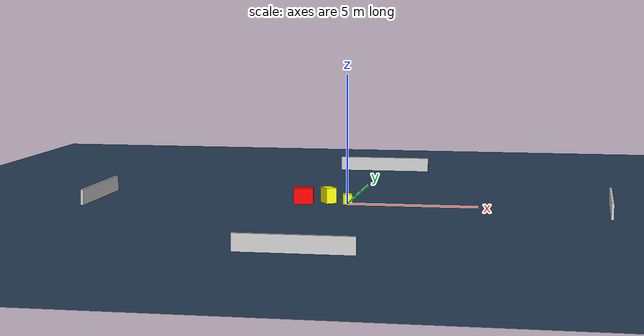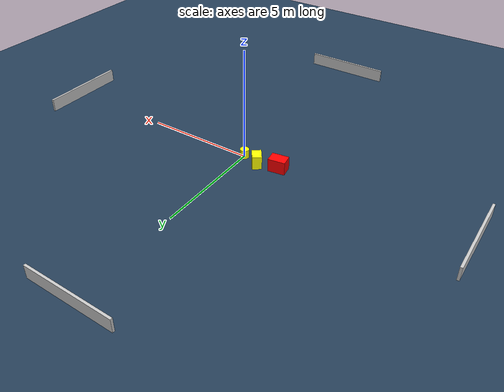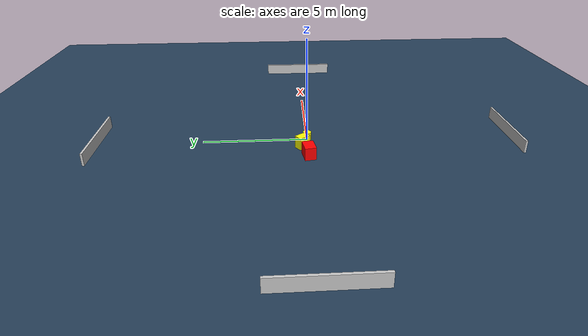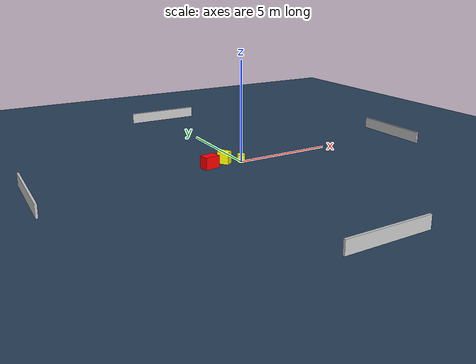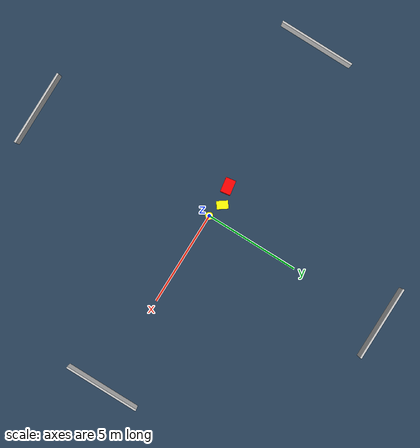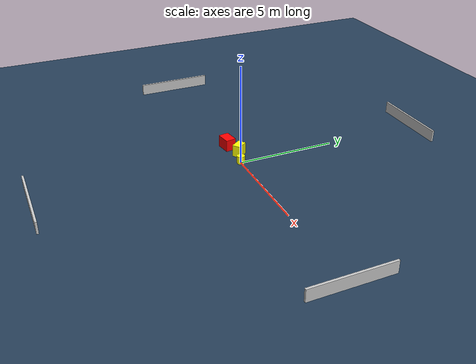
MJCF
<?xml version="1.0" ?>
<mujoco model="generated_environment">
  <option timestep="0.01" integrator="RK4" cone="elliptic"/>
  <default>
    <geom density="1"/>
  </default>
  <asset>
    <texture builtin="gradient" height="3072" name="skybox" rgb1="0.3 0.5 0.7" rgb2="0 0 0" type="skybox" width="512"/>
    <texture builtin="checker" height="300" name="groundplane" rgb1="0.2 0.3 0.4" rgb2="0.1 0.2 0.3" type="2d" width="300"/>
    <material name="groundplane" reflectance="0.2" texrepeat="5 5" texture="groundplane"/>
  </asset>
  <worldbody>
    <light dir="0 0 -1" directional="true" pos="0 0 1.5"/>
    <geom condim="3" friction="0.5 0.005 0.001" material="groundplane" name="floor" pos="0 0 0" size="0 0 0.05" type="plane"/>
    <body name="walls">
      <geom name="wall_1" condim="4" pos="-10.0 0.0 0.3" rgba="0.800000011920929 0.800000011920929 0.800000011920929 1.0" size="0.05 2.0 0.3" type="box"/>
      <geom name="wall_2" condim="4" pos="10.0 0.0 0.3" rgba="0.800000011920929 0.800000011920929 0.800000011920929 1.0" size="0.05 2.0 0.3" type="box"/>
      <geom name="wall_3" condim="4" pos="0.0 -10.0 0.3" rgba="0.800000011920929 0.800000011920929 0.800000011920929 1.0" size="2.0 0.05 0.3" type="box"/>
      <geom name="wall_4" condim="4" pos="0.0 10.0 0.3" rgba="0.800000011920929 0.800000011920929 0.800000011920929 1.0" size="2.0 0.05 0.3" type="box"/>
    </body>
    <body name="robot">
      <joint name="joint_x" type="slide" pos="0 0 0" axis="1 0 0"/>
      <joint name="joint_y" type="slide" pos="0 0 0" axis="0 1 0"/>
      <geom name="robot" type="cylinder" pos="0.0 0.0 0.2" size="0.2 0.2 0.0" mass="5.0" friction="1.0 0.005 0.0001" condim="4" rgba="1.0 1.0 0.0 1.0"/>
    </body>
    <body name="obstacle_1_movable">
      <geom name="obstacle_1_movable" condim="4" pos="-0.7979100103094491 0.25874455330159385 0.3" euler="0 0 215.77285761274484" friction="0.0 0.005 0.001" rgba="1.0 1.0 0.0 1.0" size="0.20805567107821943 0.2943100072664135 0.3" type="box" mass="0.1"/>
      <joint type="free"/>
    </body>
    <body name="obstacle_2_static">
      <geom name="obstacle_2_static" condim="4" pos="-1.7280737800213544 0.0100449341332701 0.3" euler="0 0 188.9000564479878" friction="0.0 0.005 0.001" rgba="1.0 0.0 0.0 1.0" size="0.3792142518769952 0.265090809728805 0.3" type="box"/>
    </body>
  </worldbody>
  <actuator>
    <motor name="actuator_x" joint="joint_x" gear="1" ctrlrange="-1 1"/>
    <motor name="actuator_y" joint="joint_y" gear="1" ctrlrange="-1 1"/>
  </actuator>
</mujoco>
